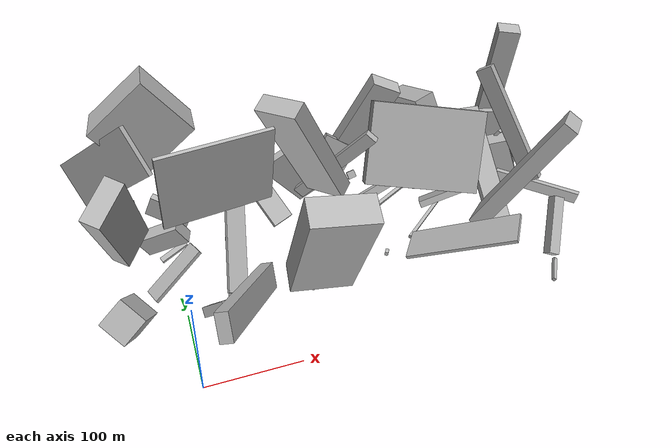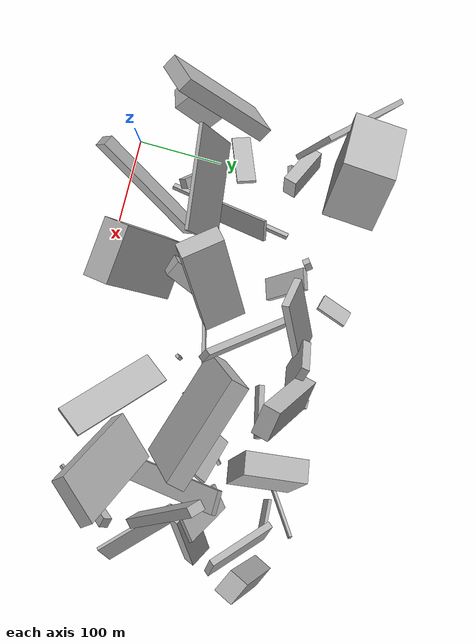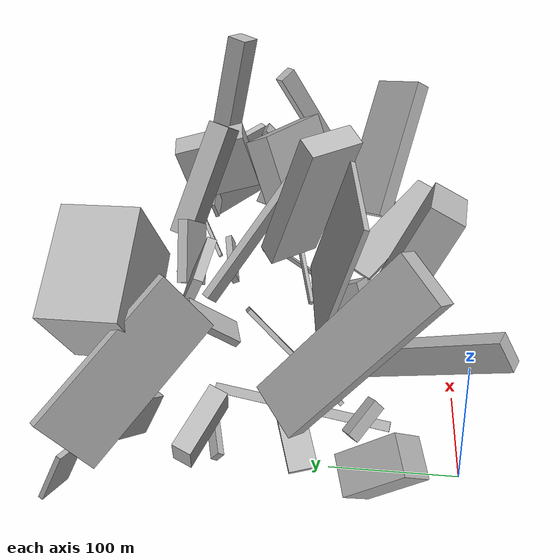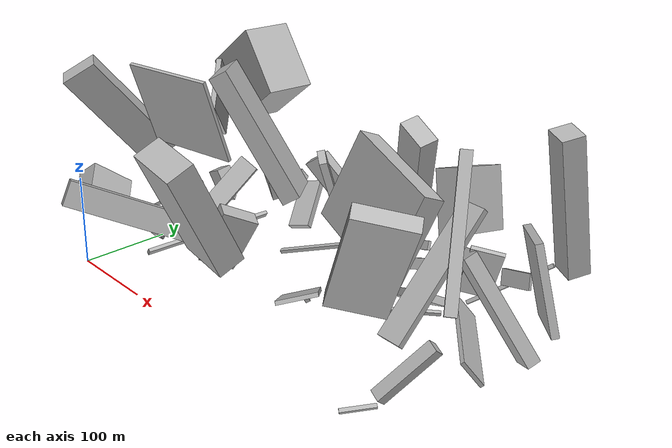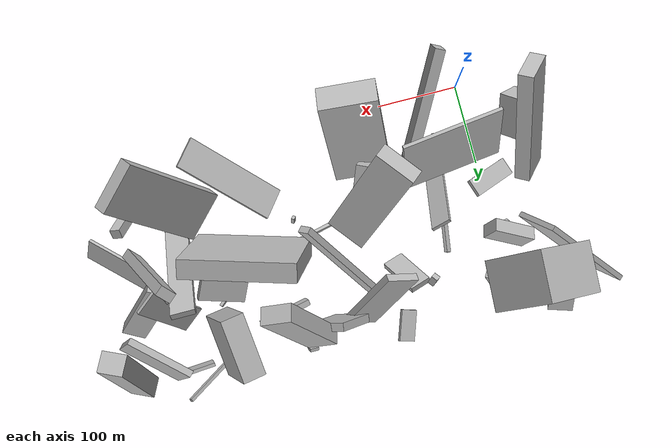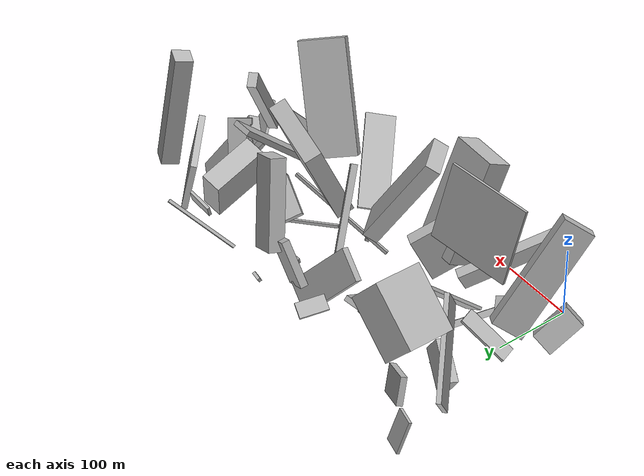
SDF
<sdf version="1.6">
 <world name="default">
  <model name="building_4">
   <static>0</static>
   <pose>383.2864216323713 62.03079347808396 121.72055989557006 1.04168757466607 -0.20015170648203806 -2.3520508733288477</pose>
   <link name="link">
    <gravity>0</gravity>
    <pose>0 0 8.5 0 0 0</pose>
    <collision name="collision"><geometry><box><size>61 150 17</size></box></geometry></collision>
    <visual name="visual">
     <cast_shadows>0</cast_shadows>
     <geometry><box><size>61 150 17</size></box></geometry>
     <material>
      <script>
       <uri>model://HANNAS_wall/materials/scripts</uri>
       <uri>model://HANNAS_wall/materials/textures</uri>
       <name>vrc/HANNAS_wall</name>
      </script>
     </material>
    </visual>
   </link>
  </model>
  <model name="building_5">
   <static>0</static>
   <pose>-51.55212720836197 284.69520832483295 43.56920488556696 -2.7361838396746596 0.13938674449914554 -0.307704487527828</pose>
   <link name="link">
    <gravity>0</gravity>
    <pose>0 0 21.5 0 0 0</pose>
    <collision name="collision"><geometry><box><size>30 4 43</size></box></geometry></collision>
    <visual name="visual">
     <cast_shadows>0</cast_shadows>
     <geometry><box><size>30 4 43</size></box></geometry>
     <material>
      <script>
       <uri>model://HANNAS_wall/materials/scripts</uri>
       <uri>model://HANNAS_wall/materials/textures</uri>
       <name>vrc/HANNAS_wall</name>
      </script>
     </material>
    </visual>
   </link>
  </model>
  <model name="building_6">
   <static>0</static>
   <pose>129.8097997410516 94.28149356373528 55.25938173667879 1.934406266954844 -1.0960436766839519 0.7853984635302592</pose>
   <link name="link">
    <gravity>0</gravity>
    <pose>0 0 10.0 0 0 0</pose>
    <collision name="collision"><geometry><box><size>61 41 20</size></box></geometry></collision>
    <visual name="visual">
     <cast_shadows>0</cast_shadows>
     <geometry><box><size>61 41 20</size></box></geometry>
     <material>
      <script>
       <uri>model://HANNAS_wall/materials/scripts</uri>
       <uri>model://HANNAS_wall/materials/textures</uri>
       <name>vrc/HANNAS_wall</name>
      </script>
     </material>
    </visual>
   </link>
  </model>
  <model name="building_8">
   <static>0</static>
   <pose>0.025552112278176775 186.54515019013184 19.397727255475488 0.9139033303441858 0.34110084089426895 -2.851541707019591</pose>
   <link name="link">
    <gravity>0</gravity>
    <pose>0 0 3.0 0 0 0</pose>
    <collision name="collision"><geometry><box><size>34 9 6</size></box></geometry></collision>
    <visual name="visual">
     <cast_shadows>0</cast_shadows>
     <geometry><box><size>34 9 6</size></box></geometry>
     <material>
      <script>
       <uri>model://HANNAS_wall/materials/scripts</uri>
       <uri>model://HANNAS_wall/materials/textures</uri>
       <name>vrc/HANNAS_wall</name>
      </script>
     </material>
    </visual>
   </link>
  </model>
  <model name="building_9">
   <static>0</static>
   <pose>345.31895203958646 239.4003978612592 88.20986729716638 -0.30149989898196555 0.25664398266699495 1.6666847174503239</pose>
   <link name="link">
    <gravity>0</gravity>
    <pose>0 0 33.0 0 0 0</pose>
    <collision name="collision"><geometry><box><size>74 27 66</size></box></geometry></collision>
    <visual name="visual">
     <cast_shadows>0</cast_shadows>
     <geometry><box><size>74 27 66</size></box></geometry>
     <material>
      <script>
       <uri>model://HANNAS_wall/materials/scripts</uri>
       <uri>model://HANNAS_wall/materials/textures</uri>
       <name>vrc/HANNAS_wall</name>
      </script>
     </material>
    </visual>
   </link>
  </model>
  <model name="building_11">
   <static>0</static>
   <pose>-7.998957960761954 204.86969032938737 40.98814126410327 1.8743012100795422 -0.4293835450404223 -0.42434459563243404</pose>
   <link name="link">
    <gravity>0</gravity>
    <pose>0 0 8.0 0 0 0</pose>
    <collision name="collision"><geometry><box><size>55 27 16</size></box></geometry></collision>
    <visual name="visual">
     <cast_shadows>0</cast_shadows>
     <geometry><box><size>55 27 16</size></box></geometry>
     <material>
      <script>
       <uri>model://HANNAS_wall/materials/scripts</uri>
       <uri>model://HANNAS_wall/materials/textures</uri>
       <name>vrc/HANNAS_wall</name>
      </script>
     </material>
    </visual>
   </link>
  </model>
  <model name="building_12">
   <static>0</static>
   <pose>-43.80108075738606 132.28803520572237 84.68413959937052 0.6070521885073444 0.3302691821474089 -0.5514105473527613</pose>
   <link name="link">
    <gravity>0</gravity>
    <pose>0 0 75.0 0 0 0</pose>
    <collision name="collision"><geometry><box><size>18 42 150</size></box></geometry></collision>
    <visual name="visual">
     <cast_shadows>0</cast_shadows>
     <geometry><box><size>18 42 150</size></box></geometry>
     <material>
      <script>
       <uri>model://HANNAS_wall/materials/scripts</uri>
       <uri>model://HANNAS_wall/materials/textures</uri>
       <name>vrc/HANNAS_wall</name>
      </script>
     </material>
    </visual>
   </link>
  </model>
  <model name="building_14">
   <static>0</static>
   <pose>315.6450606803121 161.03979851398418 14.514842414095707 1.3110750285544448 -0.001408232352759455 -2.420271280341692</pose>
   <link name="link">
    <gravity>0</gravity>
    <pose>0 0 2.0 0 0 0</pose>
    <collision name="collision"><geometry><box><size>97 4 4</size></box></geometry></collision>
    <visual name="visual">
     <cast_shadows>0</cast_shadows>
     <geometry><box><size>97 4 4</size></box></geometry>
     <material>
      <script>
       <uri>model://HANNAS_wall/materials/scripts</uri>
       <uri>model://HANNAS_wall/materials/textures</uri>
       <name>vrc/HANNAS_wall</name>
      </script>
     </material>
    </visual>
   </link>
  </model>
  <model name="building_15">
   <static>0</static>
   <pose>450.7930963223377 265.01875682603855 80.55110127027591 0.18179742168969545 0.0784933506330244 -0.4208689147602111</pose>
   <link name="link">
    <gravity>0</gravity>
    <pose>0 0 75.0 0 0 0</pose>
    <collision name="collision"><geometry><box><size>27 23 150</size></box></geometry></collision>
    <visual name="visual">
     <cast_shadows>0</cast_shadows>
     <geometry><box><size>27 23 150</size></box></geometry>
     <material>
      <script>
       <uri>model://HANNAS_wall/materials/scripts</uri>
       <uri>model://HANNAS_wall/materials/textures</uri>
       <name>vrc/HANNAS_wall</name>
      </script>
     </material>
    </visual>
   </link>
  </model>
  <model name="building_17">
   <static>0</static>
   <pose>61.608474395462 26.880542461222365 72.21114863102139 1.8083137127022992 -0.41373849396534745 -2.077847918473554</pose>
   <link name="link">
    <gravity>0</gravity>
    <pose>0 0 6.5 0 0 0</pose>
    <collision name="collision"><geometry><box><size>150 28 13</size></box></geometry></collision>
    <visual name="visual">
     <cast_shadows>0</cast_shadows>
     <geometry><box><size>150 28 13</size></box></geometry>
     <material>
      <script>
       <uri>model://HANNAS_wall/materials/scripts</uri>
       <uri>model://HANNAS_wall/materials/textures</uri>
       <name>vrc/HANNAS_wall</name>
      </script>
     </material>
    </visual>
   </link>
  </model>
  <model name="building_19">
   <static>0</static>
   <pose>433.98780714378717 186.46210989852682 65.37962725482501 2.0516716657500624 -0.33012051063592707 -0.5111846594662244</pose>
   <link name="link">
    <gravity>0</gravity>
    <pose>0 0 7.0 0 0 0</pose>
    <collision name="collision"><geometry><box><size>29 121 14</size></box></geometry></collision>
    <visual name="visual">
     <cast_shadows>0</cast_shadows>
     <geometry><box><size>29 121 14</size></box></geometry>
     <material>
      <script>
       <uri>model://HANNAS_wall/materials/scripts</uri>
       <uri>model://HANNAS_wall/materials/textures</uri>
       <name>vrc/HANNAS_wall</name>
      </script>
     </material>
    </visual>
   </link>
  </model>
  <model name="building_20">
   <static>0</static>
   <pose>387.3861220022337 262.94731780086033 53.77133010155268 2.84495179174414 -0.1882942436336872 0.07364763835905334</pose>
   <link name="link">
    <gravity>0</gravity>
    <pose>0 0 8.5 0 0 0</pose>
    <collision name="collision"><geometry><box><size>34 4 17</size></box></geometry></collision>
    <visual name="visual">
     <cast_shadows>0</cast_shadows>
     <geometry><box><size>34 4 17</size></box></geometry>
     <material>
      <script>
       <uri>model://HANNAS_wall/materials/scripts</uri>
       <uri>model://HANNAS_wall/materials/textures</uri>
       <name>vrc/HANNAS_wall</name>
      </script>
     </material>
    </visual>
   </link>
  </model>
  <model name="building_22">
   <static>0</static>
   <pose>261.47799686928346 255.02053580997 131.2140837088877 -1.83207701331495 -0.4167416296851514 3.0090508718186437</pose>
   <link name="link">
    <gravity>0</gravity>
    <pose>0 0 10.5 0 0 0</pose>
    <collision name="collision"><geometry><box><size>37 115 21</size></box></geometry></collision>
    <visual name="visual">
     <cast_shadows>0</cast_shadows>
     <geometry><box><size>37 115 21</size></box></geometry>
     <material>
      <script>
       <uri>model://HANNAS_wall/materials/scripts</uri>
       <uri>model://HANNAS_wall/materials/textures</uri>
       <name>vrc/HANNAS_wall</name>
      </script>
     </material>
    </visual>
   </link>
  </model>
  <model name="building_24">
   <static>0</static>
   <pose>-32.2156030491462 116.55530254571003 22.59386604889293 0.9864719602101245 0.07084914547675052 1.8996556792130574</pose>
   <link name="link">
    <gravity>0</gravity>
    <pose>0 0 34.0 0 0 0</pose>
    <collision name="collision"><geometry><box><size>22 4 68</size></box></geometry></collision>
    <visual name="visual">
     <cast_shadows>0</cast_shadows>
     <geometry><box><size>22 4 68</size></box></geometry>
     <material>
      <script>
       <uri>model://HANNAS_wall/materials/scripts</uri>
       <uri>model://HANNAS_wall/materials/textures</uri>
       <name>vrc/HANNAS_wall</name>
      </script>
     </material>
    </visual>
   </link>
  </model>
  <model name="building_26">
   <static>0</static>
   <pose>-67.26237640311138 56.38863498653808 42.75170259446476 0.7843308101053669 -0.575035228252139 2.3974236404765783</pose>
   <link name="link">
    <gravity>0</gravity>
    <pose>0 0 15.0 0 0 0</pose>
    <collision name="collision"><geometry><box><size>31 52 30</size></box></geometry></collision>
    <visual name="visual">
     <cast_shadows>0</cast_shadows>
     <geometry><box><size>31 52 30</size></box></geometry>
     <material>
      <script>
       <uri>model://HANNAS_wall/materials/scripts</uri>
       <uri>model://HANNAS_wall/materials/textures</uri>
       <name>vrc/HANNAS_wall</name>
      </script>
     </material>
    </visual>
   </link>
  </model>
  <model name="building_27">
   <static>0</static>
   <pose>133.9495392158777 194.6365705313949 29.80609862997868 0.3827199191165966 -0.8249426366575046 -1.5481645647557232</pose>
   <link name="link">
    <gravity>0</gravity>
    <pose>0 0 28.5 0 0 0</pose>
    <collision name="collision"><geometry><box><size>7 26 57</size></box></geometry></collision>
    <visual name="visual">
     <cast_shadows>0</cast_shadows>
     <geometry><box><size>7 26 57</size></box></geometry>
     <material>
      <script>
       <uri>model://HANNAS_wall/materials/scripts</uri>
       <uri>model://HANNAS_wall/materials/textures</uri>
       <name>vrc/HANNAS_wall</name>
      </script>
     </material>
    </visual>
   </link>
  </model>
  <model name="building_31">
   <static>0</static>
   <pose>410.2420980163743 25.66706001866379 12.69007315425693 -2.9381061424066606 -0.9860308196140521 -0.8004743338389843</pose>
   <link name="link">
    <gravity>0</gravity>
    <pose>0 0 2.0 0 0 0</pose>
    <collision name="collision"><geometry><box><size>4 34 4</size></box></geometry></collision>
    <visual name="visual">
     <cast_shadows>0</cast_shadows>
     <geometry><box><size>4 34 4</size></box></geometry>
     <material>
      <script>
       <uri>model://HANNAS_wall/materials/scripts</uri>
       <uri>model://HANNAS_wall/materials/textures</uri>
       <name>vrc/HANNAS_wall</name>
      </script>
     </material>
    </visual>
   </link>
  </model>
  <model name="building_32">
   <static>0</static>
   <pose>4.754693702601081 259.2575141230276 33.505516842945994 -1.846298896500888 -0.4470351896527536 2.7443672735579896</pose>
   <link name="link">
    <gravity>0</gravity>
    <pose>0 0 4.0 0 0 0</pose>
    <collision name="collision"><geometry><box><size>54 35 8</size></box></geometry></collision>
    <visual name="visual">
     <cast_shadows>0</cast_shadows>
     <geometry><box><size>54 35 8</size></box></geometry>
     <material>
      <script>
       <uri>model://HANNAS_wall/materials/scripts</uri>
       <uri>model://HANNAS_wall/materials/textures</uri>
       <name>vrc/HANNAS_wall</name>
      </script>
     </material>
    </visual>
   </link>
  </model>
  <model name="building_33">
   <static>0</static>
   <pose>144.31362313483584 240.21287001730735 55.93934079938752 0.9393508473729875 -0.3634400645239548 1.6401067528479656</pose>
   <link name="link">
    <gravity>0</gravity>
    <pose>0 0 21.5 0 0 0</pose>
    <collision name="collision"><geometry><box><size>9 102 43</size></box></geometry></collision>
    <visual name="visual">
     <cast_shadows>0</cast_shadows>
     <geometry><box><size>9 102 43</size></box></geometry>
     <material>
      <script>
       <uri>model://HANNAS_wall/materials/scripts</uri>
       <uri>model://HANNAS_wall/materials/textures</uri>
       <name>vrc/HANNAS_wall</name>
      </script>
     </material>
    </visual>
   </link>
  </model>
  <model name="building_34">
   <static>0</static>
   <pose>340.94971954510595 170.41592132302924 34.5167207284394 0.44625585197710604 -0.4243116234468174 -2.040755844173356</pose>
   <link name="link">
    <gravity>0</gravity>
    <pose>0 0 4.0 0 0 0</pose>
    <collision name="collision"><geometry><box><size>38 58 8</size></box></geometry></collision>
    <visual name="visual">
     <cast_shadows>0</cast_shadows>
     <geometry><box><size>38 58 8</size></box></geometry>
     <material>
      <script>
       <uri>model://HANNAS_wall/materials/scripts</uri>
       <uri>model://HANNAS_wall/materials/textures</uri>
       <name>vrc/HANNAS_wall</name>
      </script>
     </material>
    </visual>
   </link>
  </model>
  <model name="building_35">
   <static>0</static>
   <pose>383.44563180792835 202.77748861495232 49.50188332691762 -0.5718948500673497 -0.1754753199429903 -2.473600030953228</pose>
   <link name="link">
    <gravity>0</gravity>
    <pose>0 0 42.0 0 0 0</pose>
    <collision name="collision"><geometry><box><size>32 4 84</size></box></geometry></collision>
    <visual name="visual">
     <cast_shadows>0</cast_shadows>
     <geometry><box><size>32 4 84</size></box></geometry>
     <material>
      <script>
       <uri>model://HANNAS_wall/materials/scripts</uri>
       <uri>model://HANNAS_wall/materials/textures</uri>
       <name>vrc/HANNAS_wall</name>
      </script>
     </material>
    </visual>
   </link>
  </model>
  <model name="building_36">
   <static>0</static>
   <pose>255.28822798351922 270.04820917561983 22.947029738316743 -0.4935755031680874 -0.3048193516205242 -0.01929153753767791</pose>
   <link name="link">
    <gravity>0</gravity>
    <pose>0 0 5.0 0 0 0</pose>
    <collision name="collision"><geometry><box><size>11 4 10</size></box></geometry></collision>
    <visual name="visual">
     <cast_shadows>0</cast_shadows>
     <geometry><box><size>11 4 10</size></box></geometry>
     <material>
      <script>
       <uri>model://HANNAS_wall/materials/scripts</uri>
       <uri>model://HANNAS_wall/materials/textures</uri>
       <name>vrc/HANNAS_wall</name>
      </script>
     </material>
    </visual>
   </link>
  </model>
  <model name="building_37">
   <static>0</static>
   <pose>63.26196363519291 135.14662693845523 56.27539581648256 0.8387710649045325 0.44570722651145056 0.22532685252249574</pose>
   <link name="link">
    <gravity>0</gravity>
    <pose>0 0 2.0 0 0 0</pose>
    <collision name="collision"><geometry><box><size>24 108 4</size></box></geometry></collision>
    <visual name="visual">
     <cast_shadows>0</cast_shadows>
     <geometry><box><size>24 108 4</size></box></geometry>
     <material>
      <script>
       <uri>model://HANNAS_wall/materials/scripts</uri>
       <uri>model://HANNAS_wall/materials/textures</uri>
       <name>vrc/HANNAS_wall</name>
      </script>
     </material>
    </visual>
   </link>
  </model>
  <model name="building_38">
   <static>0</static>
   <pose>452.0321399243985 132.09613439900983 46.07599714147771 0.11207788200699438 -0.6402902932434045 0.7469419991090157</pose>
   <link name="link">
    <gravity>0</gravity>
    <pose>0 0 15.5 0 0 0</pose>
    <collision name="collision"><geometry><box><size>4 101 31</size></box></geometry></collision>
    <visual name="visual">
     <cast_shadows>0</cast_shadows>
     <geometry><box><size>4 101 31</size></box></geometry>
     <material>
      <script>
       <uri>model://HANNAS_wall/materials/scripts</uri>
       <uri>model://HANNAS_wall/materials/textures</uri>
       <name>vrc/HANNAS_wall</name>
      </script>
     </material>
    </visual>
   </link>
  </model>
  <model name="building_41">
   <static>0</static>
   <pose>193.64148880586686 181.8638151457149 101.92319715226772 -1.2632780847713103 -0.8224865793993003 -0.9137617086830645</pose>
   <link name="link">
    <gravity>0</gravity>
    <pose>0 0 4.0 0 0 0</pose>
    <collision name="collision"><geometry><box><size>150 15 8</size></box></geometry></collision>
    <visual name="visual">
     <cast_shadows>0</cast_shadows>
     <geometry><box><size>150 15 8</size></box></geometry>
     <material>
      <script>
       <uri>model://HANNAS_wall/materials/scripts</uri>
       <uri>model://HANNAS_wall/materials/textures</uri>
       <name>vrc/HANNAS_wall</name>
      </script>
     </material>
    </visual>
   </link>
  </model>
  <model name="building_42">
   <static>0</static>
   <pose>257.7089857960748 92.0212863718003 36.35278117510965 -0.4051034440049564 -1.0512306602501498 2.8541611269231346</pose>
   <link name="link">
    <gravity>0</gravity>
    <pose>0 0 64.5 0 0 0</pose>
    <collision name="collision"><geometry><box><size>4 39 129</size></box></geometry></collision>
    <visual name="visual">
     <cast_shadows>0</cast_shadows>
     <geometry><box><size>4 39 129</size></box></geometry>
     <material>
      <script>
       <uri>model://HANNAS_wall/materials/scripts</uri>
       <uri>model://HANNAS_wall/materials/textures</uri>
       <name>vrc/HANNAS_wall</name>
      </script>
     </material>
    </visual>
   </link>
  </model>
  <model name="building_49">
   <static>0</static>
   <pose>13.481996672735875 257.62799190597184 128.52965816900496 0.6881416251632207 -0.03421089874481381 -1.6279959743214452</pose>
   <link name="link">
    <gravity>0</gravity>
    <pose>0 0 40.0 0 0 0</pose>
    <collision name="collision"><geometry><box><size>58 84 80</size></box></geometry></collision>
    <visual name="visual">
     <cast_shadows>0</cast_shadows>
     <geometry><box><size>58 84 80</size></box></geometry>
     <material>
      <script>
       <uri>model://HANNAS_wall/materials/scripts</uri>
       <uri>model://HANNAS_wall/materials/textures</uri>
       <name>vrc/HANNAS_wall</name>
      </script>
     </material>
    </visual>
   </link>
  </model>
  <model name="building_50">
   <static>0</static>
   <pose>47.24837049011489 115.38413019157329 117.40049720452144 0.04274443694682383 0.3045099215179068 -1.4287745264539755</pose>
   <link name="link">
    <gravity>0</gravity>
    <pose>0 0 50.0 0 0 0</pose>
    <collision name="collision"><geometry><box><size>4 115 100</size></box></geometry></collision>
    <visual name="visual">
     <cast_shadows>0</cast_shadows>
     <geometry><box><size>4 115 100</size></box></geometry>
     <material>
      <script>
       <uri>model://HANNAS_wall/materials/scripts</uri>
       <uri>model://HANNAS_wall/materials/textures</uri>
       <name>vrc/HANNAS_wall</name>
      </script>
     </material>
    </visual>
   </link>
  </model>
  <model name="building_53">
   <static>0</static>
   <pose>29.154557113667988 78.69894949867641 28.93450020576173 2.74526647380668 -0.6396034683275111 -0.8000857196666005</pose>
   <link name="link">
    <gravity>0</gravity>
    <pose>0 0 5.5 0 0 0</pose>
    <collision name="collision"><geometry><box><size>34 12 11</size></box></geometry></collision>
    <visual name="visual">
     <cast_shadows>0</cast_shadows>
     <geometry><box><size>34 12 11</size></box></geometry>
     <material>
      <script>
       <uri>model://HANNAS_wall/materials/scripts</uri>
       <uri>model://HANNAS_wall/materials/textures</uri>
       <name>vrc/HANNAS_wall</name>
      </script>
     </material>
    </visual>
   </link>
  </model>
  <model name="building_57">
   <static>0</static>
   <pose>436.76753875987686 242.29411023649357 72.0680818245996 1.7815207639075528 -0.22881399266251437 -0.756262449070126</pose>
   <link name="link">
    <gravity>0</gravity>
    <pose>0 0 4.0 0 0 0</pose>
    <collision name="collision"><geometry><box><size>80 92 8</size></box></geometry></collision>
    <visual name="visual">
     <cast_shadows>0</cast_shadows>
     <geometry><box><size>80 92 8</size></box></geometry>
     <material>
      <script>
       <uri>model://HANNAS_wall/materials/scripts</uri>
       <uri>model://HANNAS_wall/materials/textures</uri>
       <name>vrc/HANNAS_wall</name>
      </script>
     </material>
    </visual>
   </link>
  </model>
  <model name="building_58">
   <static>0</static>
   <pose>138.32124733834996 275.23510060219587 66.4301286868234 -3.014360502126013 0.4962113860533276 2.8725170133598397</pose>
   <link name="link">
    <gravity>0</gravity>
    <pose>0 0 2.0 0 0 0</pose>
    <collision name="collision"><geometry><box><size>20 37 4</size></box></geometry></collision>
    <visual name="visual">
     <cast_shadows>0</cast_shadows>
     <geometry><box><size>20 37 4</size></box></geometry>
     <material>
      <script>
       <uri>model://HANNAS_wall/materials/scripts</uri>
       <uri>model://HANNAS_wall/materials/textures</uri>
       <name>vrc/HANNAS_wall</name>
      </script>
     </material>
    </visual>
   </link>
  </model>
  <model name="building_59">
   <static>0</static>
   <pose>233.45457230386629 246.6188335114648 58.08135752807653 -0.322715940804873 -1.013293620426766 0.11322398935592158</pose>
   <link name="link">
    <gravity>0</gravity>
    <pose>0 0 22.0 0 0 0</pose>
    <collision name="collision"><geometry><box><size>61 10 44</size></box></geometry></collision>
    <visual name="visual">
     <cast_shadows>0</cast_shadows>
     <geometry><box><size>61 10 44</size></box></geometry>
     <material>
      <script>
       <uri>model://HANNAS_wall/materials/scripts</uri>
       <uri>model://HANNAS_wall/materials/textures</uri>
       <name>vrc/HANNAS_wall</name>
      </script>
     </material>
    </visual>
   </link>
  </model>
  <model name="building_60">
   <static>0</static>
   <pose>-49.27881589998874 220.79931283467803 94.94815170513952 -0.09218754385311147 -0.6155729832198727 -0.7578183620974418</pose>
   <link name="link">
    <gravity>0</gravity>
    <pose>0 0 30.5 0 0 0</pose>
    <collision name="collision"><geometry><box><size>126 6 61</size></box></geometry></collision>
    <visual name="visual">
     <cast_shadows>0</cast_shadows>
     <geometry><box><size>126 6 61</size></box></geometry>
     <material>
      <script>
       <uri>model://HANNAS_wall/materials/scripts</uri>
       <uri>model://HANNAS_wall/materials/textures</uri>
       <name>vrc/HANNAS_wall</name>
      </script>
     </material>
    </visual>
   </link>
  </model>
  <model name="building_61">
   <static>0</static>
   <pose>176.36629882891748 38.7950461736487 100.0397317412198 1.3851572666542291 -1.11052219704125 -1.502780645138689</pose>
   <link name="link">
    <gravity>0</gravity>
    <pose>0 0 34.0 0 0 0</pose>
    <collision name="collision"><geometry><box><size>139 32 68</size></box></geometry></collision>
    <visual name="visual">
     <cast_shadows>0</cast_shadows>
     <geometry><box><size>139 32 68</size></box></geometry>
     <material>
      <script>
       <uri>model://HANNAS_wall/materials/scripts</uri>
       <uri>model://HANNAS_wall/materials/textures</uri>
       <name>vrc/HANNAS_wall</name>
      </script>
     </material>
    </visual>
   </link>
  </model>
  <model name="building_62">
   <static>0</static>
   <pose>371.32657580920784 271.8280803081559 30.68173157871455 2.5783909938268215 -0.5753089605048864 0.6062143080710499</pose>
   <link name="link">
    <gravity>0</gravity>
    <pose>0 0 2.0 0 0 0</pose>
    <collision name="collision"><geometry><box><size>100 4 4</size></box></geometry></collision>
    <visual name="visual">
     <cast_shadows>0</cast_shadows>
     <geometry><box><size>100 4 4</size></box></geometry>
     <material>
      <script>
       <uri>model://HANNAS_wall/materials/scripts</uri>
       <uri>model://HANNAS_wall/materials/textures</uri>
       <name>vrc/HANNAS_wall</name>
      </script>
     </material>
    </visual>
   </link>
  </model>
  <model name="building_63">
   <static>0</static>
   <pose>178.22245620124266 151.51006069516276 99.013758870222 -0.07316834768478025 -0.5322973844826158 0.7161809854891896</pose>
   <link name="link">
    <gravity>0</gravity>
    <pose>0 0 75.0 0 0 0</pose>
    <collision name="collision"><geometry><box><size>20 48 150</size></box></geometry></collision>
    <visual name="visual">
     <cast_shadows>0</cast_shadows>
     <geometry><box><size>20 48 150</size></box></geometry>
     <material>
      <script>
       <uri>model://HANNAS_wall/materials/scripts</uri>
       <uri>model://HANNAS_wall/materials/textures</uri>
       <name>vrc/HANNAS_wall</name>
      </script>
     </material>
    </visual>
   </link>
  </model>
  <model name="building_67">
   <static>0</static>
   <pose>296.7361387277774 144.86125617584912 129.4126990776171 1.9621677048892439 -0.12384570870305285 2.8443902841812103</pose>
   <link name="link">
    <gravity>0</gravity>
    <pose>0 0 11.5 0 0 0</pose>
    <collision name="collision"><geometry><box><size>134 97 23</size></box></geometry></collision>
    <visual name="visual">
     <cast_shadows>0</cast_shadows>
     <geometry><box><size>134 97 23</size></box></geometry>
     <material>
      <script>
       <uri>model://HANNAS_wall/materials/scripts</uri>
       <uri>model://HANNAS_wall/materials/textures</uri>
       <name>vrc/HANNAS_wall</name>
      </script>
     </material>
    </visual>
   </link>
  </model>
  <model name="building_72">
   <static>0</static>
   <pose>247.91675258808107 146.99425907203275 68.38598719153799 -2.7906013069875306 -0.36516192563122907 0.2585392720443273</pose>
   <link name="link">
    <gravity>0</gravity>
    <pose>0 0 2.0 0 0 0</pose>
    <collision name="collision"><geometry><box><size>150 4 4</size></box></geometry></collision>
    <visual name="visual">
     <cast_shadows>0</cast_shadows>
     <geometry><box><size>150 4 4</size></box></geometry>
     <material>
      <script>
       <uri>model://HANNAS_wall/materials/scripts</uri>
       <uri>model://HANNAS_wall/materials/textures</uri>
       <name>vrc/HANNAS_wall</name>
      </script>
     </material>
    </visual>
   </link>
  </model>
  <model name="building_77">
   <static>0</static>
   <pose>432.07532711214276 115.77865462026432 77.34167991769873 -0.05667175206921472 -0.5555010646526786 -0.8166786193266451</pose>
   <link name="link">
    <gravity>0</gravity>
    <pose>0 0 75.0 0 0 0</pose>
    <collision name="collision"><geometry><box><size>19 12 150</size></box></geometry></collision>
    <visual name="visual">
     <cast_shadows>0</cast_shadows>
     <geometry><box><size>19 12 150</size></box></geometry>
     <material>
      <script>
       <uri>model://HANNAS_wall/materials/scripts</uri>
       <uri>model://HANNAS_wall/materials/textures</uri>
       <name>vrc/HANNAS_wall</name>
      </script>
     </material>
    </visual>
   </link>
  </model>
  <model name="building_78">
   <static>0</static>
   <pose>365.72836748171653 147.4481669084959 89.41937970508197 1.5876293682492877 -0.7869466096994643 1.5575122321579498</pose>
   <link name="link">
    <gravity>0</gravity>
    <pose>0 0 14.0 0 0 0</pose>
    <collision name="collision"><geometry><box><size>150 7 28</size></box></geometry></collision>
    <visual name="visual">
     <cast_shadows>0</cast_shadows>
     <geometry><box><size>150 7 28</size></box></geometry>
     <material>
      <script>
       <uri>model://HANNAS_wall/materials/scripts</uri>
       <uri>model://HANNAS_wall/materials/textures</uri>
       <name>vrc/HANNAS_wall</name>
      </script>
     </material>
    </visual>
   </link>
  </model>
  <model name="building_79">
   <static>0</static>
   <pose>98.03825887862986 232.544626919815 70.90931971268259 2.238766101351017 0.07922957794828721 -0.9239265392114951</pose>
   <link name="link">
    <gravity>0</gravity>
    <pose>0 0 4.0 0 0 0</pose>
    <collision name="collision"><geometry><box><size>8 12 8</size></box></geometry></collision>
    <visual name="visual">
     <cast_shadows>0</cast_shadows>
     <geometry><box><size>8 12 8</size></box></geometry>
     <material>
      <script>
       <uri>model://HANNAS_wall/materials/scripts</uri>
       <uri>model://HANNAS_wall/materials/textures</uri>
       <name>vrc/HANNAS_wall</name>
      </script>
     </material>
    </visual>
   </link>
  </model>
  <model name="building_81">
   <static>0</static>
   <pose>432.3469936732078 58.223915745590254 46.53270491850598 -2.648415475054628 -0.7543600950764469 0.99005449325081</pose>
   <link name="link">
    <gravity>0</gravity>
    <pose>0 0 6.0 0 0 0</pose>
    <collision name="collision"><geometry><box><size>69 13 12</size></box></geometry></collision>
    <visual name="visual">
     <cast_shadows>0</cast_shadows>
     <geometry><box><size>69 13 12</size></box></geometry>
     <material>
      <script>
       <uri>model://HANNAS_wall/materials/scripts</uri>
       <uri>model://HANNAS_wall/materials/textures</uri>
       <name>vrc/HANNAS_wall</name>
      </script>
     </material>
    </visual>
   </link>
  </model>
  <model name="building_86">
   <static>0</static>
   <pose>246.63184827299705 216.0374196251589 24.492671133635927 1.3175164515682096 0.3719800995825435 1.7046993866105444</pose>
   <link name="link">
    <gravity>0</gravity>
    <pose>0 0 31.5 0 0 0</pose>
    <collision name="collision"><geometry><box><size>7 12 63</size></box></geometry></collision>
    <visual name="visual">
     <cast_shadows>0</cast_shadows>
     <geometry><box><size>7 12 63</size></box></geometry>
     <material>
      <script>
       <uri>model://HANNAS_wall/materials/scripts</uri>
       <uri>model://HANNAS_wall/materials/textures</uri>
       <name>vrc/HANNAS_wall</name>
      </script>
     </material>
    </visual>
   </link>
  </model>
  <model name="building_88">
   <static>0</static>
   <pose>240.7607308592502 112.44011801619358 14.16143266919633 -1.2964673659120034 1.0623969728956069 1.2118213504864377</pose>
   <link name="link">
    <gravity>0</gravity>
    <pose>0 0 2.0 0 0 0</pose>
    <collision name="collision"><geometry><box><size>9 5 4</size></box></geometry></collision>
    <visual name="visual">
     <cast_shadows>0</cast_shadows>
     <geometry><box><size>9 5 4</size></box></geometry>
     <material>
      <script>
       <uri>model://HANNAS_wall/materials/scripts</uri>
       <uri>model://HANNAS_wall/materials/textures</uri>
       <name>vrc/HANNAS_wall</name>
      </script>
     </material>
    </visual>
   </link>
  </model>
  <model name="building_89">
   <static>0</static>
   <pose>41.94817890916022 53.11421733915722 9.705729815903716 -1.4683039830011118 -0.8793299643750849 -0.23918981616162033</pose>
   <link name="link">
    <gravity>0</gravity>
    <pose>0 0 75.0 0 0 0</pose>
    <collision name="collision"><geometry><box><size>8 4 150</size></box></geometry></collision>
    <visual name="visual">
     <cast_shadows>0</cast_shadows>
     <geometry><box><size>8 4 150</size></box></geometry>
     <material>
      <script>
       <uri>model://HANNAS_wall/materials/scripts</uri>
       <uri>model://HANNAS_wall/materials/textures</uri>
       <name>vrc/HANNAS_wall</name>
      </script>
     </material>
    </visual>
   </link>
  </model>
 </world>
</sdf>
